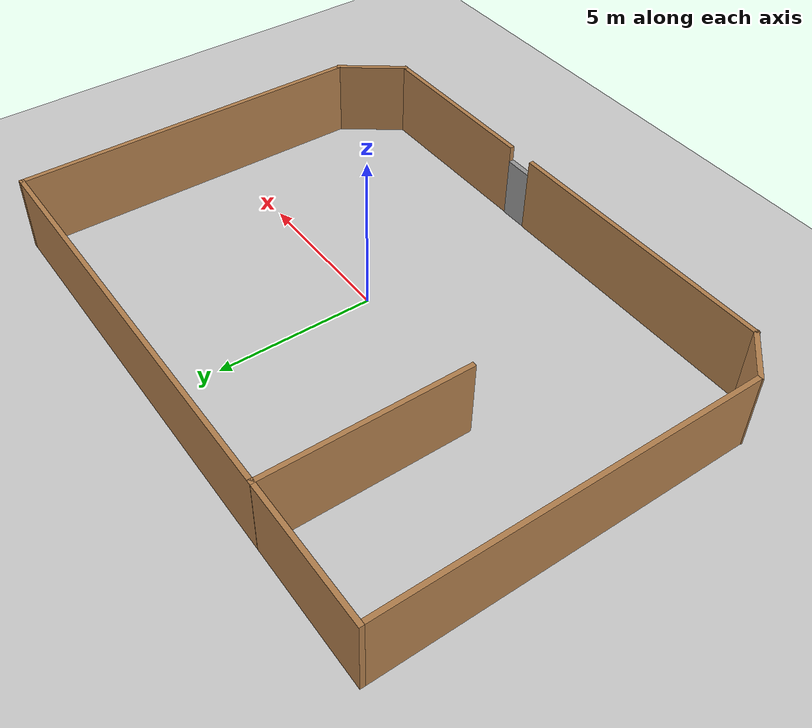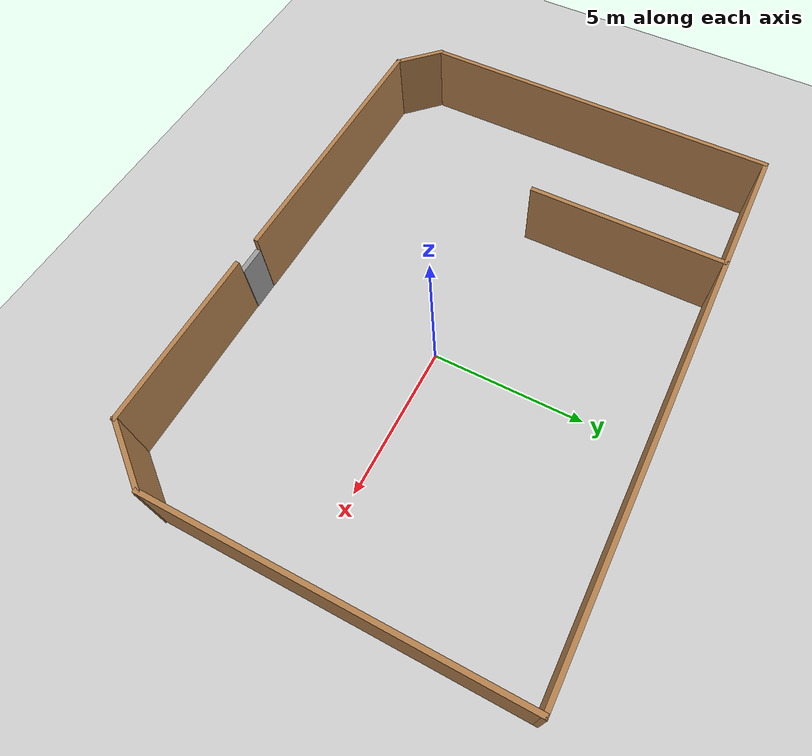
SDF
<sdf version="1.6">
 <world name="default">
  <light name="sun" type="directional">
   <pose>0 0 10 0 -0 0</pose>
   <diffuse>0.8 0.8 0.8 1</diffuse>
   <specular>0.2 0.2 0.2 1</specular>
   <attenuation>
    <range>1000</range>
    <constant>0.9</constant>
    <linear>0.01</linear>
    <quadratic>0.001</quadratic>
   </attenuation>
   <direction>-0.5 0.1 -0.9</direction>
  </light>
  <model name="ground_plane">
   <static>1</static>
   <link name="link">
    <collision name="collision">
     <geometry><plane><normal>0 0 1</normal><size>100 100</size></plane></geometry>
     <surface>
      <contact><collide_bitmask>65535</collide_bitmask></contact>
      <friction><ode><mu>100</mu><mu2>50</mu2></ode></friction>
     </surface>
    </collision>
    <visual name="visual">
     <cast_shadows>0</cast_shadows>
     <geometry><plane><normal>0 0 1</normal><size>100 100</size></plane></geometry>
     <material>
      <script><uri>file://media/materials/scripts/gazebo.material</uri><name>Gazebo/Grey</name></script>
     </material>
    </visual>
   </link>
  </model>
  <gravity>0 0 -9.8</gravity>
  <magnetic_field>6e-06 2.3e-05 -4.2e-05</magnetic_field>
  <atmosphere type="adiabatic"/>
  <physics name="default_physics" default="0" type="ode">
   <max_step_size>0.001</max_step_size>
   <real_time_factor>1</real_time_factor>
   <real_time_update_rate>1000</real_time_update_rate>
  </physics>
  <scene><ambient>0.4 0.4 0.4 1</ambient><background>0.7 0.7 0.7 1</background><shadows>1</shadows></scene>
  <audio><device>default</device></audio>
  <spherical_coordinates>
   <surface_model>EARTH_WGS84</surface_model>
   <latitude_deg>0</latitude_deg>
   <longitude_deg>0</longitude_deg>
   <elevation>0</elevation>
   <heading_deg>0</heading_deg>
  </spherical_coordinates>
  <model name="my_world">
   <pose>-0.988583 0.436625 0 0 -0 0</pose>
   <link name="Door_0">
    <collision name="Door_0_Collision">
     <geometry><box><size>0.9 0.17 2</size></box></geometry>
     <pose>0 0 1 0 -0 0</pose>
    </collision>
    <visual name="Door_0_Visual">
     <pose>0 0 1 0 -0 0</pose>
     <geometry><box><size>0.9 0.17 2</size></box></geometry>
     <material>
      <script><uri>file://media/materials/scripts/gazebo.material</uri><name>Gazebo/Grey</name></script>
     </material>
    </visual>
    <pose>1.51181 -6.55427 0 0 -0 0</pose>
   </link>
   <link name="Wall_11">
    <collision name="Wall_11_Collision">
     <geometry><box><size>5.75 0.15 2.5</size></box></geometry>
     <pose>0 0 1.25 0 -0 0</pose>
    </collision>
    <visual name="Wall_11_Visual">
     <pose>0 0 1.25 0 -0 0</pose>
     <geometry><box><size>5.75 0.15 2.5</size></box></geometry>
     <material>
      <script><uri>file://media/materials/scripts/gazebo.material</uri><name>Gazebo/Wood</name></script>
      <ambient>1 1 1 1</ambient>
     </material>
     <meta><layer>0</layer></meta>
    </visual>
    <pose>4.84788 -6.5589 0 0 -0 0</pose>
   </link>
   <link name="Wall_12">
    <collision name="Wall_12_Collision">
     <geometry><box><size>2.3927 0.15 2.5</size></box></geometry>
     <pose>0 0 1.25 0 -0 0</pose>
    </collision>
    <visual name="Wall_12_Visual">
     <pose>0 0 1.25 0 -0 0</pose>
     <geometry><box><size>2.3927 0.15 2.5</size></box></geometry>
     <material>
      <script><uri>file://media/materials/scripts/gazebo.material</uri><name>Gazebo/Wood</name></script>
      <ambient>1 1 1 1</ambient>
     </material>
     <meta><layer>0</layer></meta>
    </visual>
    <pose>8.31175 -5.65518 0 0 -0 0.93723</pose>
   </link>
   <link name="Wall_13">
    <collision name="Wall_13_Collision">
     <geometry><box><size>11.5 0.15 2.5</size></box></geometry>
     <pose>0 0 1.25 0 -0 0</pose>
    </collision>
    <visual name="Wall_13_Visual">
     <pose>0 0 1.25 0 -0 0</pose>
     <geometry><box><size>11.5 0.15 2.5</size></box></geometry>
     <material>
      <script><uri>file://media/materials/scripts/gazebo.material</uri><name>Gazebo/Wood</name></script>
      <ambient>1 1 1 1</ambient>
     </material>
     <meta><layer>0</layer></meta>
    </visual>
    <pose>8.97561 0.913747 0 0 -0 1.5708</pose>
   </link>
   <link name="Wall_15">
    <collision name="Wall_15_Collision">
     <geometry><box><size>13.7241 0.15 2.5</size></box></geometry>
     <pose>0 0 1.25 0 -0 0</pose>
    </collision>
    <visual name="Wall_15_Visual">
     <pose>0 0 1.25 0 -0 0</pose>
     <geometry><box><size>13.7241 0.15 2.5</size></box></geometry>
     <material>
      <script><uri>file://media/materials/scripts/gazebo.material</uri><name>Gazebo/Wood</name></script>
      <ambient>1 1 1 1</ambient>
     </material>
     <meta><layer>0</layer></meta>
    </visual>
    <pose>2.18856 6.58875 0 0 -0 3.14159</pose>
   </link>
   <link name="Wall_18">
    <collision name="Wall_18_Collision">
     <geometry><box><size>6.5 0.15 2.5</size></box></geometry>
     <pose>0 0 1.25 0 -0 0</pose>
    </collision>
    <visual name="Wall_18_Visual">
     <pose>0 0 1.25 0 -0 0</pose>
     <geometry><box><size>6.5 0.15 2.5</size></box></geometry>
     <material>
      <script><uri>file://media/materials/scripts/gazebo.material</uri><name>Gazebo/Wood</name></script>
      <ambient>1 1 1 1</ambient>
     </material>
     <meta><layer>0</layer></meta>
    </visual>
    <pose>-4.61144 3.41375 0 0 -0 -1.5708</pose>
   </link>
   <link name="Wall_20">
    <collision name="Wall_20_Collision">
     <geometry><box><size>4.5259 0.15 2.5</size></box></geometry>
     <pose>0 0 1.25 0 -0 0</pose>
    </collision>
    <visual name="Wall_20_Visual">
     <pose>0 0 1.25 0 -0 0</pose>
     <geometry><box><size>4.5259 0.15 2.5</size></box></geometry>
     <material>
      <script><uri>file://media/materials/scripts/gazebo.material</uri><name>Gazebo/Wood</name></script>
      <ambient>1 1 1 1</ambient>
     </material>
     <meta><layer>0</layer></meta>
    </visual>
    <pose>-6.78644 6.58875 0 0 -0 3.14159</pose>
   </link>
   <link name="Wall_21">
    <collision name="Wall_21_Collision">
     <geometry><box><size>12 0.15 2.5</size></box></geometry>
     <pose>0 0 1.25 0 -0 0</pose>
    </collision>
    <visual name="Wall_21_Visual">
     <pose>0 0 1.25 0 -0 0</pose>
     <geometry><box><size>12 0.15 2.5</size></box></geometry>
     <material>
      <script><uri>file://media/materials/scripts/gazebo.material</uri><name>Gazebo/Wood</name></script>
      <ambient>1 1 1 1</ambient>
     </material>
     <meta><layer>0</layer></meta>
    </visual>
    <pose>-8.97439 0.663747 0 0 -0 -1.5708</pose>
   </link>
   <link name="Wall_24">
    <collision name="Wall_24_Collision">
     <geometry><box><size>1.75 0.15 2.5</size></box></geometry>
     <pose>0 0 1.25 0 -0 0</pose>
    </collision>
    <visual name="Wall_24_Visual">
     <pose>0 0 1.25 0 -0 0</pose>
     <geometry><box><size>1.75 0.15 2.5</size></box></geometry>
     <material>
      <script><uri>file://media/materials/scripts/gazebo.material</uri><name>Gazebo/Wood</name></script>
      <ambient>1 1 1 1</ambient>
     </material>
     <meta><layer>0</layer></meta>
    </visual>
    <pose>-8.4087 -5.92694 0 0 -0 -0.785398</pose>
   </link>
   <link name="Wall_26">
    <collision name="Wall_26_Collision">
     <geometry><box><size>8.9832 0.15 2.5</size></box></geometry>
     <pose>0 0 1.25 0 -0 0</pose>
    </collision>
    <visual name="Wall_26_Visual">
     <pose>0 0 1.25 0 -0 0</pose>
     <geometry><box><size>8.9832 0.15 2.5</size></box></geometry>
     <material>
      <script><uri>file://media/materials/scripts/gazebo.material</uri><name>Gazebo/Wood</name></script>
      <ambient>1 1 1 1</ambient>
     </material>
     <meta><layer>0</layer></meta>
    </visual>
    <pose>-3.42646 -6.51214 0 0 -0 3.13718</pose>
   </link>
   <static>1</static>
  </model>
 </world>
</sdf>
